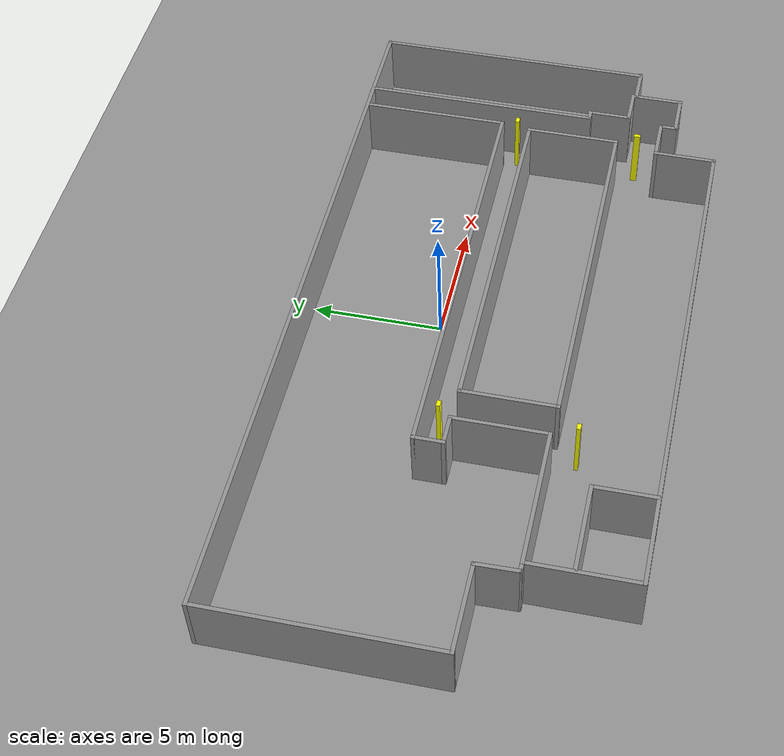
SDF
<sdf version="1.6">
 <world name="default">
  <light name="sun" type="directional">
   <pose>0 0 10 0 -0 0</pose>
   <diffuse>0.8 0.8 0.8 1</diffuse>
   <specular>0.2 0.2 0.2 1</specular>
   <attenuation>
    <range>1000</range>
    <constant>0.9</constant>
    <linear>0.01</linear>
    <quadratic>0.001</quadratic>
   </attenuation>
   <direction>0.5 0.1 -0.9</direction>
  </light>
  <scene><ambient>0.4 0.4 0.4 1</ambient><background>0.7 0.7 0.7 1</background><shadows>1</shadows></scene>
  <physics name="default_physics" default="0" type="ode">
   <max_step_size>0.01</max_step_size>
   <real_time_factor>1</real_time_factor>
   <real_time_update_rate>100</real_time_update_rate>
  </physics>
  <model name="ground_plane_0">
   <static>1</static>
   <link name="link">
    <collision name="collision">
     <geometry><plane><normal>0 0 1</normal><size>100 100</size></plane></geometry>
     <surface><friction><ode><mu>100</mu><mu2>50</mu2></ode></friction></surface>
    </collision>
    <visual name="visual">
     <cast_shadows>0</cast_shadows>
     <geometry><plane><normal>0 0 1</normal><size>100 100</size></plane></geometry>
     <material>
      <script><uri>file://media/materials/scripts/gazebo.material</uri><name>Gazebo/Grey</name></script>
     </material>
    </visual>
    <velocity_decay><linear>0</linear><angular>0</angular></velocity_decay>
   </link>
   <pose>0.497681 0 0 0 -0 0</pose>
  </model>
  <gravity>0 0 -9.8</gravity>
  <magnetic_field>6e-06 2.3e-05 -4.2e-05</magnetic_field>
  <atmosphere type="adiabatic"/>
  <spherical_coordinates>
   <surface_model>EARTH_WGS84</surface_model>
   <latitude_deg>0</latitude_deg>
   <longitude_deg>0</longitude_deg>
   <elevation>0</elevation>
   <heading_deg>0</heading_deg>
  </spherical_coordinates>
  <model name="my_world2">
   <pose>-0.793223 -2.13599 0 0 -0 0</pose>
   <link name="Wall_1">
    <collision name="Wall_1_Collision">
     <geometry><box><size>11 0.15 2.5</size></box></geometry>
     <pose>0 0 1.25 0 -0 0</pose>
    </collision>
    <visual name="Wall_1_Visual">
     <pose>0 0 1.25 0 -0 0</pose>
     <geometry><box><size>11 0.15 2.5</size></box></geometry>
     <material>
      <script><uri>file://media/materials/scripts/gazebo.material</uri><name>Gazebo/Grey</name></script>
      <ambient>1 1 1 1</ambient>
     </material>
    </visual>
    <pose>14.1599 1.83946 0 0 -0 1.5708</pose>
   </link>
   <link name="Wall_13">
    <collision name="Wall_13_Collision">
     <geometry><box><size>0.5 0.15 2.5</size></box></geometry>
     <pose>0 0 1.25 0 -0 0</pose>
    </collision>
    <visual name="Wall_13_Visual">
     <pose>0 0 1.25 0 -0 0</pose>
     <geometry><box><size>0.5 0.15 2.5</size></box></geometry>
     <material>
      <script><uri>file://media/materials/scripts/gazebo.material</uri><name>Gazebo/Grey</name></script>
      <ambient>1 1 1 1</ambient>
     </material>
    </visual>
    <pose>-10.6349 -3.1553 0 0 -0 0</pose>
   </link>
   <link name="Wall_15">
    <collision name="Wall_15_Collision">
     <geometry><box><size>4.25 0.15 2.5</size></box></geometry>
     <pose>0 0 1.25 0 -0 0</pose>
    </collision>
    <visual name="Wall_15_Visual">
     <pose>0 0 1.25 0 -0 0</pose>
     <geometry><box><size>4.25 0.15 2.5</size></box></geometry>
     <material>
      <script><uri>file://media/materials/scripts/gazebo.material</uri><name>Gazebo/Grey</name></script>
      <ambient>1 1 1 1</ambient>
     </material>
    </visual>
    <pose>-10.4599 -5.2053 0 0 0 -1.5708</pose>
   </link>
   <link name="Wall_16">
    <collision name="Wall_16_Collision">
     <geometry><box><size>20.25 0.15 2.5</size></box></geometry>
     <pose>0 0 1.25 0 -0 0</pose>
    </collision>
    <visual name="Wall_16_Visual">
     <pose>0 0 1.25 0 -0 0</pose>
     <geometry><box><size>20.25 0.15 2.5</size></box></geometry>
     <material>
      <script><uri>file://media/materials/scripts/gazebo.material</uri><name>Gazebo/Grey</name></script>
      <ambient>1 1 1 1</ambient>
     </material>
    </visual>
    <pose>-0.409876 -7.2553 0 0 -0 0</pose>
   </link>
   <link name="Wall_17">
    <collision name="Wall_17_Collision">
     <geometry><box><size>2.5 0.15 2.5</size></box></geometry>
     <pose>0 0 1.25 0 -0 0</pose>
    </collision>
    <visual name="Wall_17_Visual">
     <pose>0 0 1.25 0 -0 0</pose>
     <geometry><box><size>2.5 0.15 2.5</size></box></geometry>
     <material>
      <script><uri>file://media/materials/scripts/gazebo.material</uri><name>Gazebo/Grey</name></script>
      <ambient>1 1 1 1</ambient>
     </material>
    </visual>
    <pose>9.64012 -6.08029 0 0 -0 1.5708</pose>
   </link>
   <link name="Wall_18">
    <collision name="Wall_18_Collision">
     <geometry><box><size>1.75 0.15 2.5</size></box></geometry>
     <pose>0 0 1.25 0 -0 0</pose>
    </collision>
    <visual name="Wall_18_Visual">
     <pose>0 0 1.25 0 -0 0</pose>
     <geometry><box><size>1.75 0.15 2.5</size></box></geometry>
     <material>
      <script><uri>file://media/materials/scripts/gazebo.material</uri><name>Gazebo/Grey</name></script>
      <ambient>1 1 1 1</ambient>
     </material>
    </visual>
    <pose>10.4401 -4.9053 0 0 -0 0</pose>
   </link>
   <link name="Wall_19">
    <collision name="Wall_19_Collision">
     <geometry><box><size>0.75 0.15 2.5</size></box></geometry>
     <pose>0 0 1.25 0 -0 0</pose>
    </collision>
    <visual name="Wall_19_Visual">
     <pose>0 0 1.25 0 -0 0</pose>
     <geometry><box><size>0.75 0.15 2.5</size></box></geometry>
     <material>
      <script><uri>file://media/materials/scripts/gazebo.material</uri><name>Gazebo/Grey</name></script>
      <ambient>1 1 1 1</ambient>
     </material>
    </visual>
    <pose>11.2401 -5.2053 0 0 0 -1.5708</pose>
   </link>
   <link name="Wall_2">
    <collision name="Wall_2_Collision">
     <geometry><box><size>28.5 0.15 2.5</size></box></geometry>
     <pose>0 0 1.25 0 -0 0</pose>
    </collision>
    <visual name="Wall_2_Visual">
     <pose>0 0 1.25 0 -0 0</pose>
     <geometry><box><size>28.5 0.15 2.5</size></box></geometry>
     <material>
      <script><uri>file://media/materials/scripts/gazebo.material</uri><name>Gazebo/Grey</name></script>
      <ambient>1 1 1 1</ambient>
     </material>
    </visual>
    <pose>-0.015122 7.26446 0 0 -0 3.14159</pose>
   </link>
   <link name="Wall_20">
    <collision name="Wall_20_Collision">
     <geometry><box><size>1.75 0.15 2.5</size></box></geometry>
     <pose>0 0 1.25 0 -0 0</pose>
    </collision>
    <visual name="Wall_20_Visual">
     <pose>0 0 1.25 0 -0 0</pose>
     <geometry><box><size>1.75 0.15 2.5</size></box></geometry>
     <material>
      <script><uri>file://media/materials/scripts/gazebo.material</uri><name>Gazebo/Grey</name></script>
      <ambient>1 1 1 1</ambient>
     </material>
    </visual>
    <pose>12.0401 -5.5053 0 0 -0 0</pose>
   </link>
   <link name="Wall_21">
    <collision name="Wall_21_Collision">
     <geometry><box><size>2 0.15 2.5</size></box></geometry>
     <pose>0 0 1.25 0 -0 0</pose>
    </collision>
    <visual name="Wall_21_Visual">
     <pose>0 0 1.25 0 -0 0</pose>
     <geometry><box><size>2 0.15 2.5</size></box></geometry>
     <material>
      <script><uri>file://media/materials/scripts/gazebo.material</uri><name>Gazebo/Grey</name></script>
      <ambient>1 1 1 1</ambient>
     </material>
    </visual>
    <pose>12.8401 -4.5803 0 0 -0 1.5708</pose>
   </link>
   <link name="Wall_22">
    <collision name="Wall_22_Collision">
     <geometry><box><size>1.5 0.15 2.5</size></box></geometry>
     <pose>0 0 1.25 0 -0 0</pose>
    </collision>
    <visual name="Wall_22_Visual">
     <pose>0 0 1.25 0 -0 0</pose>
     <geometry><box><size>1.5 0.15 2.5</size></box></geometry>
     <material>
      <script><uri>file://media/materials/scripts/gazebo.material</uri><name>Gazebo/Grey</name></script>
      <ambient>1 1 1 1</ambient>
     </material>
    </visual>
    <pose>13.5151 -3.6553 0 0 -0 0</pose>
   </link>
   <link name="Wall_24">
    <collision name="Wall_24_Collision">
     <geometry><box><size>0.15 0.15 2.5</size></box></geometry>
     <pose>0 0 1.25 0 -0 0</pose>
    </collision>
    <visual name="Wall_24_Visual">
     <pose>0 0 1.25 0 -0 0</pose>
     <geometry><box><size>0.15 0.15 2.5</size></box></geometry>
     <material>
      <script><uri>file://media/materials/scripts/gazebo.material</uri><name>Gazebo/Grey</name></script>
      <ambient>1 1 1 1</ambient>
     </material>
    </visual>
    <pose>14.1901 -3.6553 0 0 -0 0</pose>
   </link>
   <link name="Wall_26">
    <collision name="Wall_26_Collision">
     <geometry><box><size>5.5 0.15 2.5</size></box></geometry>
     <pose>0 0 1.25 0 -0 0</pose>
    </collision>
    <visual name="Wall_26_Visual">
     <pose>0 0 1.25 0 -0 0</pose>
     <geometry><box><size>5.5 0.15 2.5</size></box></geometry>
     <material>
      <script><uri>file://media/materials/scripts/gazebo.material</uri><name>Gazebo/Grey</name></script>
      <ambient>1 1 1 1</ambient>
     </material>
    </visual>
    <pose>-7.78488 -3.1553 0 0 -0 0</pose>
   </link>
   <link name="Wall_28">
    <collision name="Wall_28_Collision">
     <geometry><box><size>3.75 0.15 2.5</size></box></geometry>
     <pose>0 0 1.25 0 -0 0</pose>
    </collision>
    <visual name="Wall_28_Visual">
     <pose>0 0 1.25 0 -0 0</pose>
     <geometry><box><size>3.75 0.15 2.5</size></box></geometry>
     <material>
      <script><uri>file://media/materials/scripts/gazebo.material</uri><name>Gazebo/Grey</name></script>
      <ambient>1 1 1 1</ambient>
     </material>
    </visual>
    <pose>-5.10988 -1.3553 0 0 -0 1.5708</pose>
   </link>
   <link name="Wall_29">
    <collision name="Wall_29_Collision">
     <geometry><box><size>1.25 0.15 2.5</size></box></geometry>
     <pose>0 0 1.25 0 -0 0</pose>
    </collision>
    <visual name="Wall_29_Visual">
     <pose>0 0 1.25 0 -0 0</pose>
     <geometry><box><size>1.25 0.15 2.5</size></box></geometry>
     <material>
      <script><uri>file://media/materials/scripts/gazebo.material</uri><name>Gazebo/Grey</name></script>
      <ambient>1 1 1 1</ambient>
     </material>
    </visual>
    <pose>-5.65988 0.444704 0 0 -0 3.14159</pose>
   </link>
   <link name="Wall_3">
    <collision name="Wall_3_Collision">
     <geometry><box><size>9 0.15 2.5</size></box></geometry>
     <pose>0 0 1.25 0 -0 0</pose>
    </collision>
    <visual name="Wall_3_Visual">
     <pose>0 0 1.25 0 -0 0</pose>
     <geometry><box><size>9 0.15 2.5</size></box></geometry>
     <material>
      <script><uri>file://media/materials/scripts/gazebo.material</uri><name>Gazebo/Grey</name></script>
      <ambient>1 1 1 1</ambient>
     </material>
    </visual>
    <pose>-14.1901 2.83946 0 0 0 -1.5708</pose>
   </link>
   <link name="Wall_30">
    <collision name="Wall_30_Collision">
     <geometry><box><size>1.25 0.15 2.5</size></box></geometry>
     <pose>0 0 1.25 0 -0 0</pose>
    </collision>
    <visual name="Wall_30_Visual">
     <pose>0 0 1.25 0 -0 0</pose>
     <geometry><box><size>1.25 0.15 2.5</size></box></geometry>
     <material>
      <script><uri>file://media/materials/scripts/gazebo.material</uri><name>Gazebo/Grey</name></script>
      <ambient>1 1 1 1</ambient>
     </material>
    </visual>
    <pose>-6.20988 0.994704 0 0 -0 1.5708</pose>
   </link>
   <link name="Wall_31">
    <collision name="Wall_31_Collision">
     <geometry><box><size>16.5 0.15 2.5</size></box></geometry>
     <pose>0 0 1.25 0 -0 0</pose>
    </collision>
    <visual name="Wall_31_Visual">
     <pose>0 0 1.25 0 -0 0</pose>
     <geometry><box><size>16.5 0.15 2.5</size></box></geometry>
     <material>
      <script><uri>file://media/materials/scripts/gazebo.material</uri><name>Gazebo/Grey</name></script>
      <ambient>1 1 1 1</ambient>
     </material>
    </visual>
    <pose>1.96512 1.5447 0 0 -0 0</pose>
   </link>
   <link name="Wall_33">
    <collision name="Wall_33_Collision">
     <geometry><box><size>5.75 0.15 2.5</size></box></geometry>
     <pose>0 0 1.25 0 -0 0</pose>
    </collision>
    <visual name="Wall_33_Visual">
     <pose>0 0 1.25 0 -0 0</pose>
     <geometry><box><size>5.75 0.15 2.5</size></box></geometry>
     <material>
      <script><uri>file://media/materials/scripts/gazebo.material</uri><name>Gazebo/Grey</name></script>
      <ambient>1 1 1 1</ambient>
     </material>
    </visual>
    <pose>10.1401 4.3447 0 0 -0 1.5708</pose>
   </link>
   <link name="Wall_37">
    <collision name="Wall_37_Collision">
     <geometry><box><size>9.25 0.15 2.5</size></box></geometry>
     <pose>0 0 1.25 0 -0 0</pose>
    </collision>
    <visual name="Wall_37_Visual">
     <pose>0 0 1.25 0 -0 0</pose>
     <geometry><box><size>9.25 0.15 2.5</size></box></geometry>
     <material>
      <script><uri>file://media/materials/scripts/gazebo.material</uri><name>Gazebo/Grey</name></script>
      <ambient>1 1 1 1</ambient>
     </material>
    </visual>
    <pose>11.1525 2.62238 0 0 0 -1.5708</pose>
   </link>
   <link name="Wall_38">
    <collision name="Wall_38_Collision">
     <geometry><box><size>0.5 0.15 2.5</size></box></geometry>
     <pose>0 0 1.25 0 -0 0</pose>
    </collision>
    <visual name="Wall_38_Visual">
     <pose>0 0 1.25 0 -0 0</pose>
     <geometry><box><size>0.5 0.15 2.5</size></box></geometry>
     <material>
      <script><uri>file://media/materials/scripts/gazebo.material</uri><name>Gazebo/Grey</name></script>
      <ambient>1 1 1 1</ambient>
     </material>
    </visual>
    <pose>11.3275 -1.92762 0 0 -0 0</pose>
   </link>
   <link name="Wall_4">
    <collision name="Wall_4_Collision">
     <geometry><box><size>3.5 0.15 2.5</size></box></geometry>
     <pose>0 0 1.25 0 -0 0</pose>
    </collision>
    <visual name="Wall_4_Visual">
     <pose>0 0 1.25 0 -0 0</pose>
     <geometry><box><size>3.5 0.15 2.5</size></box></geometry>
     <material>
      <script><uri>file://media/materials/scripts/gazebo.material</uri><name>Gazebo/Grey</name></script>
      <ambient>1 1 1 1</ambient>
     </material>
    </visual>
    <pose>-12.5151 -1.58554 0 0 -0 0</pose>
   </link>
   <link name="Wall_40">
    <collision name="Wall_40_Collision">
     <geometry><box><size>1.75 0.15 2.5</size></box></geometry>
     <pose>0 0 1.25 0 -0 0</pose>
    </collision>
    <visual name="Wall_40_Visual">
     <pose>0 0 1.25 0 -0 0</pose>
     <geometry><box><size>1.75 0.15 2.5</size></box></geometry>
     <material>
      <script><uri>file://media/materials/scripts/gazebo.material</uri><name>Gazebo/Grey</name></script>
      <ambient>1 1 1 1</ambient>
     </material>
    </visual>
    <pose>11.5025 -2.72762 0 0 0 -1.5708</pose>
   </link>
   <link name="Wall_41">
    <collision name="Wall_41_Collision">
     <geometry><box><size>1.5 0.15 2.5</size></box></geometry>
     <pose>0 0 1.25 0 -0 0</pose>
    </collision>
    <visual name="Wall_41_Visual">
     <pose>0 0 1.25 0 -0 0</pose>
     <geometry><box><size>1.5 0.15 2.5</size></box></geometry>
     <material>
      <script><uri>file://media/materials/scripts/gazebo.material</uri><name>Gazebo/Grey</name></script>
      <ambient>1 1 1 1</ambient>
     </material>
    </visual>
    <pose>12.1775 -3.52762 0 0 -0 0</pose>
   </link>
   <link name="Wall_43">
    <collision name="Wall_43_Collision">
     <geometry><box><size>14 0.15 2.5</size></box></geometry>
     <pose>0 0 1.25 0 -0 0</pose>
    </collision>
    <visual name="Wall_43_Visual">
     <pose>0 0 1.25 0 -0 0</pose>
     <geometry><box><size>14 0.15 2.5</size></box></geometry>
     <material>
      <script><uri>file://media/materials/scripts/gazebo.material</uri><name>Gazebo/Grey</name></script>
      <ambient>1 1 1 1</ambient>
     </material>
    </visual>
    <pose>3.04573 0.372822 0 0 -0 0</pose>
   </link>
   <link name="Wall_44">
    <collision name="Wall_44_Collision">
     <geometry><box><size>3.75 0.15 2.5</size></box></geometry>
     <pose>0 0 1.25 0 -0 0</pose>
    </collision>
    <visual name="Wall_44_Visual">
     <pose>0 0 1.25 0 -0 0</pose>
     <geometry><box><size>3.75 0.15 2.5</size></box></geometry>
     <material>
      <script><uri>file://media/materials/scripts/gazebo.material</uri><name>Gazebo/Grey</name></script>
      <ambient>1 1 1 1</ambient>
     </material>
    </visual>
    <pose>9.97073 -1.42718 0 0 0 -1.5708</pose>
   </link>
   <link name="Wall_45">
    <collision name="Wall_45_Collision">
     <geometry><box><size>14 0.15 2.5</size></box></geometry>
     <pose>0 0 1.25 0 -0 0</pose>
    </collision>
    <visual name="Wall_45_Visual">
     <pose>0 0 1.25 0 -0 0</pose>
     <geometry><box><size>14 0.15 2.5</size></box></geometry>
     <material>
      <script><uri>file://media/materials/scripts/gazebo.material</uri><name>Gazebo/Grey</name></script>
      <ambient>1 1 1 1</ambient>
     </material>
    </visual>
    <pose>3.04573 -3.22718 0 0 -0 3.14159</pose>
   </link>
   <link name="Wall_47">
    <collision name="Wall_47_Collision">
     <geometry><box><size>3.75 0.15 2.5</size></box></geometry>
     <pose>0 0 1.25 0 -0 0</pose>
    </collision>
    <visual name="Wall_47_Visual">
     <pose>0 0 1.25 0 -0 0</pose>
     <geometry><box><size>3.75 0.15 2.5</size></box></geometry>
     <material>
      <script><uri>file://media/materials/scripts/gazebo.material</uri><name>Gazebo/Grey</name></script>
      <ambient>1 1 1 1</ambient>
     </material>
    </visual>
    <pose>-3.87927 -1.42718 0 0 -0 1.5708</pose>
   </link>
   <link name="Wall_49">
    <collision name="Wall_49_Collision">
     <geometry><box><size>3.5 0.15 2.5</size></box></geometry>
     <pose>0 0 1.25 0 -0 0</pose>
    </collision>
    <visual name="Wall_49_Visual">
     <pose>0 0 1.25 0 -0 0</pose>
     <geometry><box><size>3.5 0.15 2.5</size></box></geometry>
     <material>
      <script><uri>file://media/materials/scripts/gazebo.material</uri><name>Gazebo/Grey</name></script>
      <ambient>1 1 1 1</ambient>
     </material>
    </visual>
    <pose>-8.69682 -4.91446 0 0 -0 0</pose>
   </link>
   <link name="Wall_5">
    <collision name="Wall_5_Collision">
     <geometry><box><size>1.72005 0.15 2.5</size></box></geometry>
     <pose>0 0 1.25 0 -0 0</pose>
    </collision>
    <visual name="Wall_5_Visual">
     <pose>0 0 1.25 0 -0 0</pose>
     <geometry><box><size>1.72005 0.15 2.5</size></box></geometry>
     <material>
      <script><uri>file://media/materials/scripts/gazebo.material</uri><name>Gazebo/Grey</name></script>
      <ambient>1 1 1 1</ambient>
     </material>
    </visual>
    <pose>-10.825 -2.37042 0 0 0 -1.55153</pose>
   </link>
   <link name="Wall_50">
    <collision name="Wall_50_Collision">
     <geometry><box><size>2.5 0.15 2.5</size></box></geometry>
     <pose>0 0 1.25 0 -0 0</pose>
    </collision>
    <visual name="Wall_50_Visual">
     <pose>0 0 1.25 0 -0 0</pose>
     <geometry><box><size>2.5 0.15 2.5</size></box></geometry>
     <material>
      <script><uri>file://media/materials/scripts/gazebo.material</uri><name>Gazebo/Grey</name></script>
      <ambient>1 1 1 1</ambient>
     </material>
    </visual>
    <pose>-7.02182 -6.08946 0 0 0 -1.5708</pose>
   </link>
   <link name="Wall_52">
    <collision name="Wall_52_Collision">
     <geometry><box><size>0.25 0.15 2.5</size></box></geometry>
     <pose>0 0 1.25 0 -0 0</pose>
    </collision>
    <visual name="Wall_52_Visual">
     <pose>0 0 1.25 0 -0 0</pose>
     <geometry><box><size>0.25 0.15 2.5</size></box></geometry>
     <material>
      <script><uri>file://media/materials/scripts/gazebo.material</uri><name>Gazebo/Grey</name></script>
      <ambient>1 1 0 1</ambient>
     </material>
    </visual>
    <pose>-4.60246 -4.09578 0 0 -0 0</pose>
   </link>
   <link name="Wall_54">
    <collision name="Wall_54_Collision">
     <geometry><box><size>0.25 0.15 2.5</size></box></geometry>
     <pose>0 0 1.25 0 -0 0</pose>
    </collision>
    <visual name="Wall_54_Visual">
     <pose>0 0 1.25 0 -0 0</pose>
     <geometry><box><size>0.25 0.15 2.5</size></box></geometry>
     <material>
      <script><uri>file://media/materials/scripts/gazebo.material</uri><name>Gazebo/Grey</name></script>
      <ambient>1 1 0 1</ambient>
     </material>
    </visual>
    <pose>-4.59109 0.975458 0 0 -0 0</pose>
   </link>
   <link name="Wall_56">
    <collision name="Wall_56_Collision">
     <geometry><box><size>0.25 0.15 2.5</size></box></geometry>
     <pose>0 0 1.25 0 -0 0</pose>
    </collision>
    <visual name="Wall_56_Visual">
     <pose>0 0 1.25 0 -0 0</pose>
     <geometry><box><size>0.25 0.15 2.5</size></box></geometry>
     <material>
      <script><uri>file://media/materials/scripts/gazebo.material</uri><name>Gazebo/Grey</name></script>
      <ambient>1 1 0 1</ambient>
     </material>
    </visual>
    <pose>10.4293 0.941347 0 0 -0 0</pose>
   </link>
   <static>1</static>
  </model>
  <model name="my_world2_0">
   <pose>9.69108 -6.16875 0 0 -0 0</pose>
   <link name="Wall_61">
    <collision name="Wall_61_Collision">
     <geometry><box><size>0.25 0.15 2.5</size></box></geometry>
     <pose>0 0 1.25 0 -0 0</pose>
    </collision>
    <visual name="Wall_61_Visual">
     <pose>0 0 1.25 0 -0 0</pose>
     <geometry><box><size>0.25 0.15 2.5</size></box></geometry>
     <material>
      <script><uri>file://media/materials/scripts/gazebo.material</uri><name>Gazebo/Grey</name></script>
      <ambient>1 1 0 1</ambient>
     </material>
    </visual>
    <pose>0 0 0 0 -0 1.5708</pose>
   </link>
   <static>1</static>
  </model>
 </world>
</sdf>
